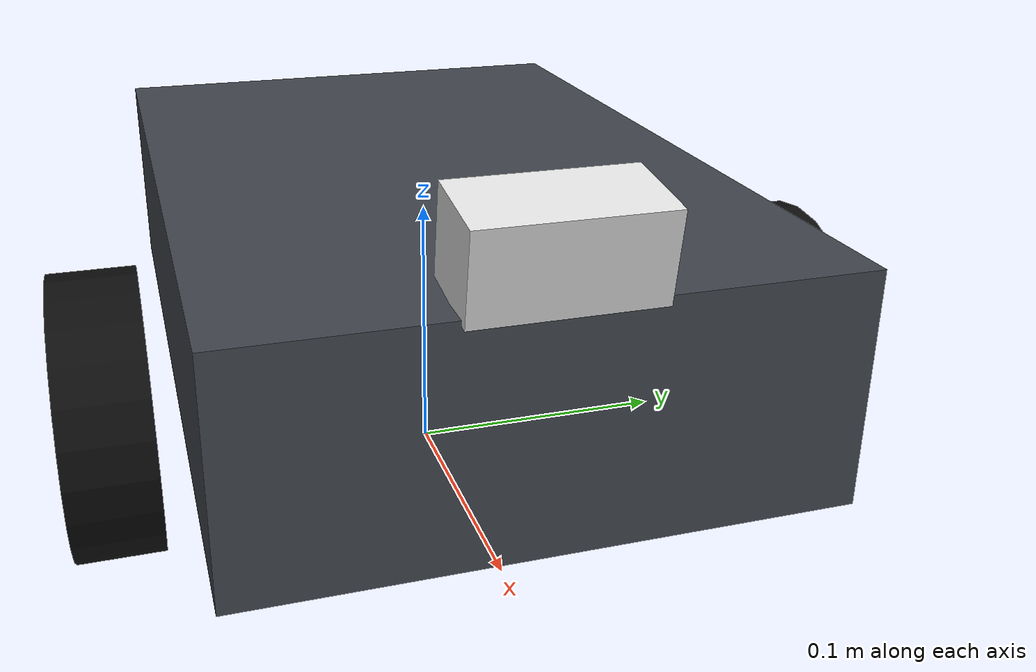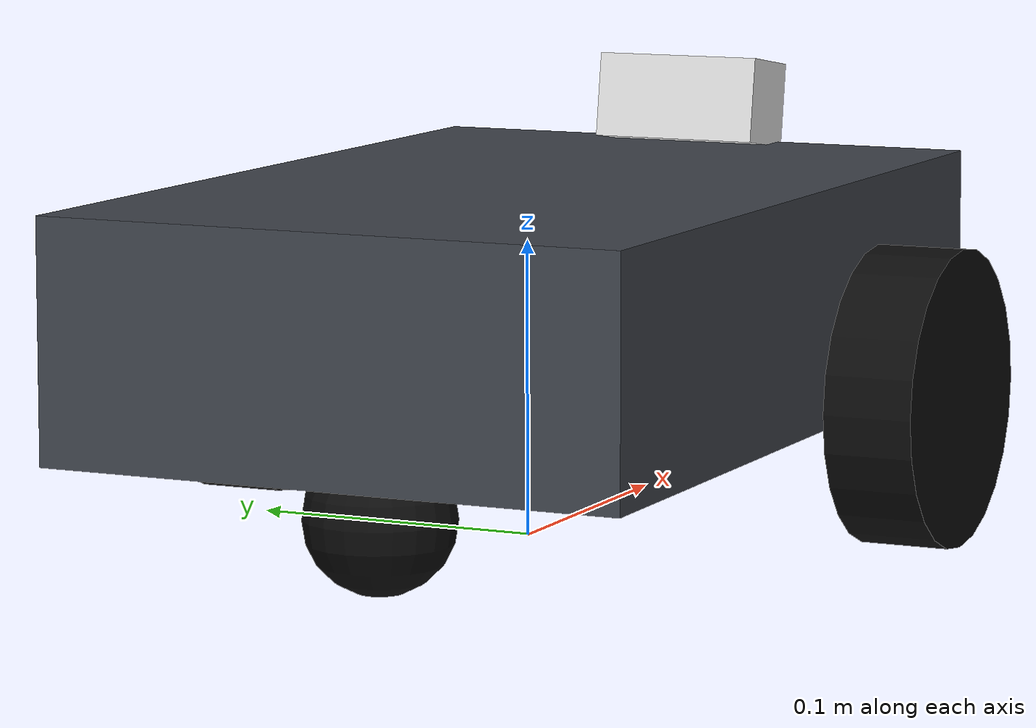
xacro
<?xml version="1.0"?>
<robot name="vision_bot" xmlns:xacro="http://www.ros.org/wiki/xacro">

  <!-- ===================== Parameters ===================== -->
  <xacro:property name="PI" value="3.14159265359"/>

  <!-- Chassis -->
  <xacro:property name="base_length" value="0.30"/>
  <xacro:property name="base_width"  value="0.20"/>
  <xacro:property name="base_height" value="0.08"/>
  <xacro:property name="base_mass"   value="2.0"/>
  <xacro:property name="base_z"      value="0.03"/>   <!-- box centre above axle -->

  <!-- Wheels -->
  <xacro:property name="wheel_radius"     value="0.05"/>
  <xacro:property name="wheel_width"      value="0.03"/>
  <xacro:property name="wheel_mass"       value="0.2"/>
  <xacro:property name="wheel_x"          value="0.04"/>
  <xacro:property name="wheel_separation" value="0.25"/>

  <!-- Caster -->
  <xacro:property name="caster_radius" value="0.025"/>
  <xacro:property name="caster_mass"   value="0.05"/>
  <xacro:property name="caster_x"      value="-0.11"/>

  <!-- Camera: front-top, pitched slightly down to see the floor ahead -->
  <xacro:property name="camera_x"     value="0.14"/>
  <xacro:property name="camera_z"     value="0.085"/>
  <xacro:property name="camera_pitch" value="0.15"/>   <!-- rad, + = nose down -->
  <xacro:property name="camera_size"  value="0.03"/>
  <xacro:property name="camera_mass"  value="0.05"/>

  <!-- ===================== Inertia macros ===================== -->
  <xacro:macro name="box_inertia" params="m x y z">
    <inertia ixx="${m*(y*y+z*z)/12}" ixy="0" ixz="0"
             iyy="${m*(x*x+z*z)/12}" iyz="0"
             izz="${m*(x*x+y*y)/12}"/>
  </xacro:macro>

  <xacro:macro name="cylinder_inertia" params="m r h">
    <inertia ixx="${m*(3*r*r+h*h)/12}" ixy="0" ixz="0"
             iyy="${m*(3*r*r+h*h)/12}" iyz="0"
             izz="${m*r*r/2}"/>
  </xacro:macro>

  <xacro:macro name="sphere_inertia" params="m r">
    <inertia ixx="${2*m*r*r/5}" ixy="0" ixz="0"
             iyy="${2*m*r*r/5}" iyz="0"
             izz="${2*m*r*r/5}"/>
  </xacro:macro>

  <!-- ===================== Materials (RViz) ===================== -->
  <material name="chassis_grey"><color rgba="0.25 0.27 0.30 1.0"/></material>
  <material name="wheel_black"><color rgba="0.05 0.05 0.05 1.0"/></material>
  <material name="camera_white"><color rgba="0.9 0.9 0.9 1.0"/></material>

  <!-- ===================== Links & joints ===================== -->
  <link name="base_footprint"/>

  <joint name="base_joint" type="fixed">
    <parent link="base_footprint"/>
    <child link="base_link"/>
    <origin xyz="0 0 ${wheel_radius}" rpy="0 0 0"/>
  </joint>

  <link name="base_link">
    <visual>
      <origin xyz="0 0 ${base_z}" rpy="0 0 0"/>
      <geometry><box size="${base_length} ${base_width} ${base_height}"/></geometry>
      <material name="chassis_grey"/>
    </visual>
    <collision>
      <origin xyz="0 0 ${base_z}" rpy="0 0 0"/>
      <geometry><box size="${base_length} ${base_width} ${base_height}"/></geometry>
    </collision>
    <inertial>
      <origin xyz="0 0 ${base_z}" rpy="0 0 0"/>
      <mass value="${base_mass}"/>
      <xacro:box_inertia m="${base_mass}" x="${base_length}" y="${base_width}" z="${base_height}"/>
    </inertial>
  </link>

  <!-- Wheel macro: side = left/right, reflect = +1/-1 -->
  <xacro:macro name="wheel" params="side reflect">
    <link name="${side}_wheel_link">
      <visual>
        <origin xyz="0 0 0" rpy="${-PI/2} 0 0"/>
        <geometry><cylinder radius="${wheel_radius}" length="${wheel_width}"/></geometry>
        <material name="wheel_black"/>
      </visual>
      <collision>
        <origin xyz="0 0 0" rpy="${-PI/2} 0 0"/>
        <geometry><cylinder radius="${wheel_radius}" length="${wheel_width}"/></geometry>
      </collision>
      <inertial>
        <origin xyz="0 0 0" rpy="${-PI/2} 0 0"/>
        <mass value="${wheel_mass}"/>
        <xacro:cylinder_inertia m="${wheel_mass}" r="${wheel_radius}" h="${wheel_width}"/>
      </inertial>
    </link>

    <joint name="${side}_wheel_joint" type="continuous">
      <parent link="base_link"/>
      <child link="${side}_wheel_link"/>
      <origin xyz="${wheel_x} ${reflect*wheel_separation/2} 0" rpy="0 0 0"/>
      <axis xyz="0 1 0"/>
    </joint>

    <gazebo reference="${side}_wheel_link">
      <mu1>1.0</mu1>
      <mu2>1.0</mu2>
    </gazebo>
  </xacro:macro>

  <xacro:wheel side="left"  reflect="1"/>
  <xacro:wheel side="right" reflect="-1"/>

  <!-- Caster: frictionless sphere at the rear -->
  <link name="caster_link">
    <visual>
      <geometry><sphere radius="${caster_radius}"/></geometry>
      <material name="wheel_black"/>
    </visual>
    <collision>
      <geometry><sphere radius="${caster_radius}"/></geometry>
    </collision>
    <inertial>
      <mass value="${caster_mass}"/>
      <xacro:sphere_inertia m="${caster_mass}" r="${caster_radius}"/>
    </inertial>
  </link>

  <joint name="caster_joint" type="fixed">
    <parent link="base_link"/>
    <child link="caster_link"/>
    <origin xyz="${caster_x} 0 ${caster_radius - wheel_radius}" rpy="0 0 0"/>
  </joint>

  <gazebo reference="caster_link">
    <mu1>0.0</mu1>
    <mu2>0.0</mu2>
  </gazebo>

  <!-- Camera body -->
  <link name="camera_link">
    <visual>
      <geometry><box size="${camera_size} ${camera_size*2} ${camera_size}"/></geometry>
      <material name="camera_white"/>
    </visual>
    <collision>
      <geometry><box size="${camera_size} ${camera_size*2} ${camera_size}"/></geometry>
    </collision>
    <inertial>
      <mass value="${camera_mass}"/>
      <xacro:box_inertia m="${camera_mass}" x="${camera_size}" y="${camera_size*2}" z="${camera_size}"/>
    </inertial>
  </link>

  <joint name="camera_joint" type="fixed">
    <parent link="base_link"/>
    <child link="camera_link"/>
    <origin xyz="${camera_x} 0 ${camera_z}" rpy="0 ${camera_pitch} 0"/>
  </joint>

  <!-- Optical frame (z forward, x right, y down): the frame images are expressed in -->
  <link name="camera_link_optical"/>

  <joint name="camera_optical_joint" type="fixed">
    <parent link="camera_link"/>
    <child link="camera_link_optical"/>
    <origin xyz="0 0 0" rpy="${-PI/2} 0 ${-PI/2}"/>
  </joint>

  <!-- ===================== Gazebo: camera sensor ===================== -->
  <!-- Gazebo cameras look along +x of their link, so the sensor sits on
       camera_link; gz_frame_id stamps images with the optical frame. -->
  <gazebo reference="camera_link">
    <sensor name="front_camera" type="camera">
      <always_on>true</always_on>
      <update_rate>30</update_rate>
      <visualize>true</visualize>
      <topic>/vision_bot/camera/image_raw</topic>
      <gz_frame_id>camera_link_optical</gz_frame_id>
      <camera name="front_camera">
        <camera_info_topic>/vision_bot/camera/camera_info</camera_info_topic>
        <horizontal_fov>1.047</horizontal_fov>   <!-- 60 deg -->
        <image>
          <width>640</width>
          <height>480</height>
          <format>R8G8B8</format>
        </image>
        <clip>
          <near>0.05</near>
          <far>20.0</far>
        </clip>
        <noise>
          <type>gaussian</type>
          <mean>0.0</mean>
          <stddev>0.007</stddev>
        </noise>
      </camera>
    </sensor>
  </gazebo>

  <!-- ===================== Gazebo: drive + joint states ===================== -->
  <gazebo>
    <plugin filename="gz-sim-diff-drive-system" name="gz::sim::systems::DiffDrive">
      <left_joint>left_wheel_joint</left_joint>
      <right_joint>right_wheel_joint</right_joint>
      <wheel_separation>${wheel_separation}</wheel_separation>
      <wheel_radius>${wheel_radius}</wheel_radius>

      <!-- Limits shape the stopping distance, which we will measure later -->
      <max_linear_velocity>0.5</max_linear_velocity>
      <min_linear_velocity>-0.3</min_linear_velocity>
      <max_angular_velocity>1.5</max_angular_velocity>
      <min_angular_velocity>-1.5</min_angular_velocity>
      <max_linear_acceleration>1.0</max_linear_acceleration>
      <min_linear_acceleration>-2.0</min_linear_acceleration>
      <max_angular_acceleration>3.0</max_angular_acceleration>
      <min_angular_acceleration>-3.0</min_angular_acceleration>

      <topic>/vision_bot/cmd_vel</topic>
      <odom_topic>/vision_bot/odom</odom_topic>
      <tf_topic>/vision_bot/tf</tf_topic>
      <frame_id>odom</frame_id>
      <child_frame_id>base_footprint</child_frame_id>
      <odom_publish_frequency>30</odom_publish_frequency>
    </plugin>

    <plugin filename="gz-sim-joint-state-publisher-system"
            name="gz::sim::systems::JointStatePublisher">
      <topic>/vision_bot/joint_states</topic>
    </plugin>
  </gazebo>

</robot>
